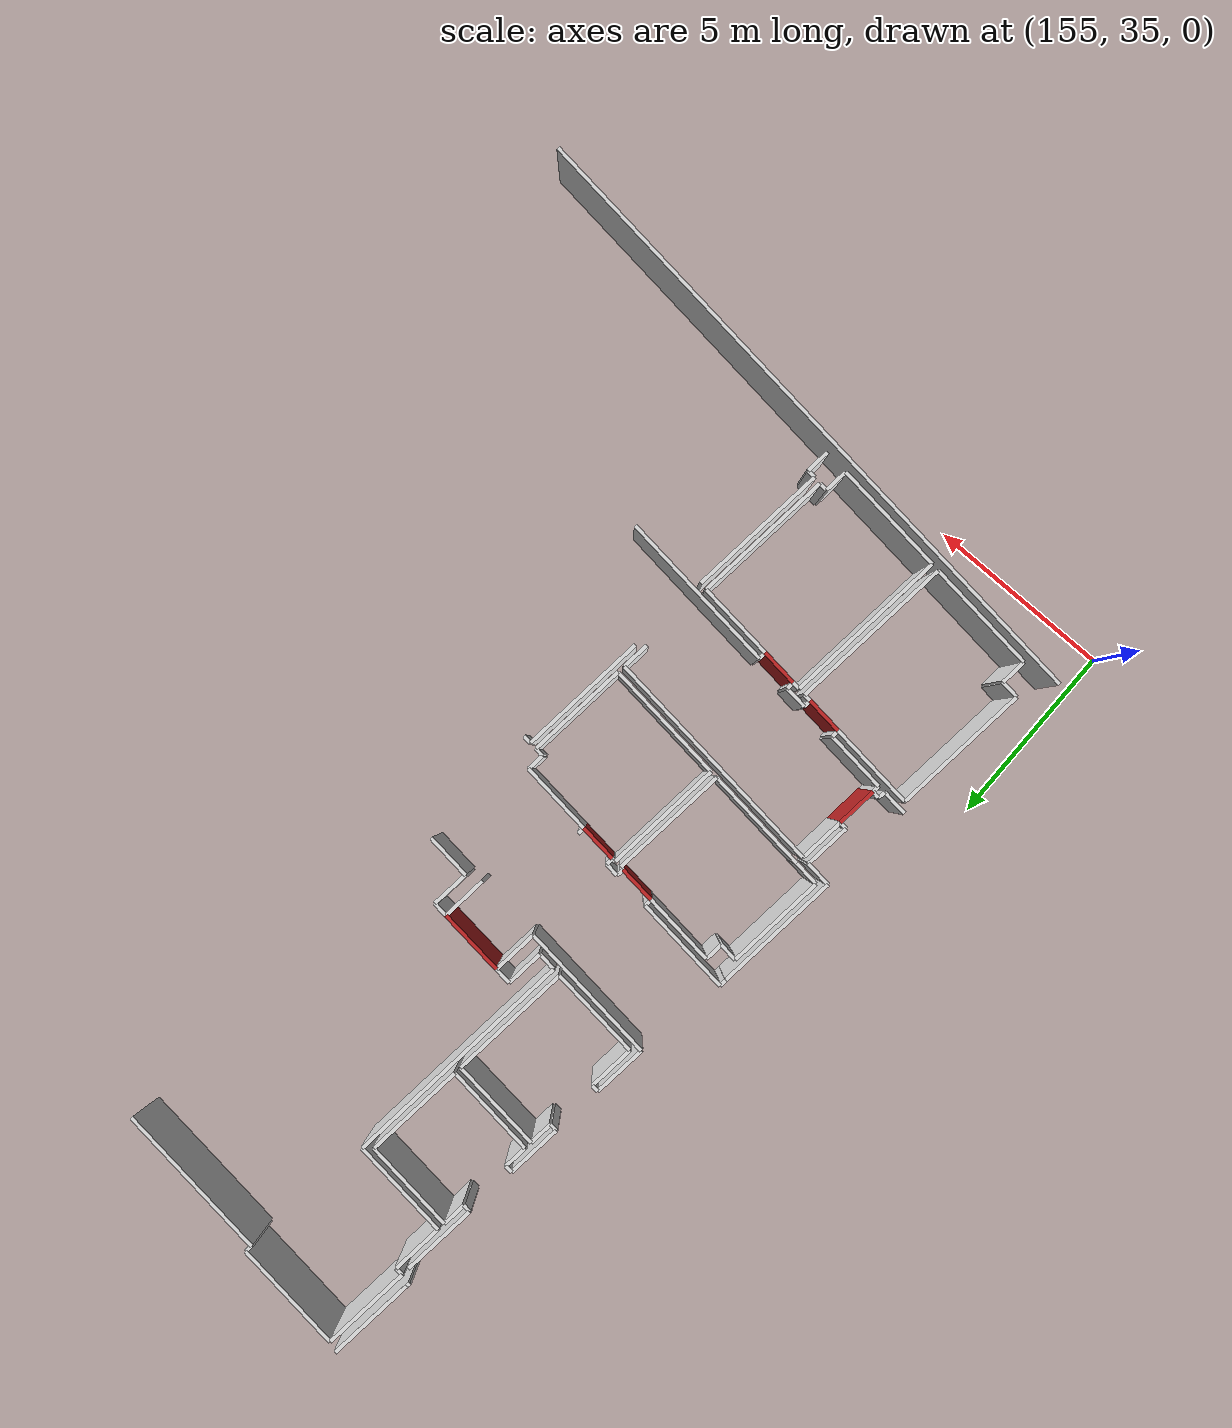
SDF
<sdf version="1.6">
 <world name="default">
  <model name="wall_161.1_40.6">
   <static>true</static>
   <pose>161.1350000000093 40.56000000005588 1.5 0 0 -0.1206236686924795</pose>
   <link name="link">
    <visual name="visual">
     <geometry><box><size>0.9972462083198822 0.1 3</size></box></geometry>
     <material>
      <script><uri>file://media/materials/scripts/gazebo.material</uri><name>Gazebo/Red</name></script>
     </material>
    </visual>
   </link>
  </model>
  <model name="wall_160.4_46.8">
   <static>true</static>
   <pose>160.3850000000093 46.81999999983236 1.5 0 0 -0.1206236686924795</pose>
   <link name="link">
    <visual name="visual">
     <geometry><box><size>0.9972462083198822 0.1 3</size></box></geometry>
     <material>
      <script><uri>file://media/materials/scripts/gazebo.material</uri><name>Gazebo/Red</name></script>
     </material>
    </visual>
   </link>
  </model>
  <model name="wall_161.8_46.7">
   <static>true</static>
   <pose>161.7600000000093 46.66000000014901 1.5 0 0 -0.11942892612851068</pose>
   <link name="link">
    <visual name="visual">
     <geometry><box><size>1.0071742649744493 0.1 3</size></box></geometry>
     <material>
      <script><uri>file://media/materials/scripts/gazebo.material</uri><name>Gazebo/Red</name></script>
     </material>
    </visual>
   </link>
  </model>
  <model name="wall_162.6_50.5">
   <static>true</static>
   <pose>162.57000000000698 50.484999999869615 1.5 0 0 3.02415796381574</pose>
   <link name="link">
    <visual name="visual">
     <geometry><box><size>1.7923448329168745 0.1 3</size></box></geometry>
     <material>
      <script><uri>file://media/materials/scripts/gazebo.material</uri><name>Gazebo/Red</name></script>
     </material>
    </visual>
   </link>
  </model>
  <model name="wall_157.5_41.9">
   <static>true</static>
   <pose>157.51500000001397 41.94500000006519 1.5 0 0 -1.6895016639081246</pose>
   <link name="link">
    <visual name="visual">
     <geometry><box><size>1.0977249203199801 0.1 3</size></box></geometry>
     <material>
      <script><uri>file://media/materials/scripts/gazebo.material</uri><name>Gazebo/Red</name></script>
     </material>
    </visual>
   </link>
  </model>
  <model name="wall_159.5_40.8">
   <static>true</static>
   <pose>159.5449999999837 40.75 1.5 0 0 -0.1206236686924795</pose>
   <link name="link">
    <visual name="visual">
     <geometry><box><size>0.9972462083198822 0.1 3</size></box></geometry>
     <material>
      <script><uri>file://media/materials/scripts/gazebo.material</uri><name>Gazebo/Red</name></script>
     </material>
    </visual>
   </link>
  </model>
  <model name="wall_163.6_36.1">
   <static>true</static>
   <pose>163.64499999998952 36.11999999987893 1.5 0 0 1.4618543698162652</pose>
   <link name="link">
    <visual name="visual">
     <geometry><box><size>0.6438167442431666 0.1 3</size></box></geometry>
     <material>
      <script><uri>file://media/materials/scripts/gazebo.material</uri><name>Gazebo/White</name></script>
     </material>
    </visual>
   </link>
  </model>
  <model name="wall_163.6_36.5">
   <static>true</static>
   <pose>163.57000000000698 36.455000000074506 1.5 0 0 3.00606493842361</pose>
   <link name="link">
    <visual name="visual">
     <geometry><box><size>0.2220360331192952 0.1 3</size></box></geometry>
     <material>
      <script><uri>file://media/materials/scripts/gazebo.material</uri><name>Gazebo/White</name></script>
     </material>
    </visual>
   </link>
  </model>
  <model name="wall_163.7_38.3">
   <static>true</static>
   <pose>163.69000000000233 38.34500000020489 1.5 0 0 1.44873942407576</pose>
   <link name="link">
    <visual name="visual">
     <geometry><box><size>3.7781079920994487 0.1 3</size></box></geometry>
     <material>
      <script><uri>file://media/materials/scripts/gazebo.material</uri><name>Gazebo/White</name></script>
     </material>
    </visual>
   </link>
  </model>
  <model name="wall_162.7_40.4">
   <static>true</static>
   <pose>162.67499999998836 40.375 1.5 0 0 3.0225410860422697</pose>
   <link name="link">
    <visual name="visual">
     <geometry><box><size>2.104899047428106 0.1 3</size></box></geometry>
     <material>
      <script><uri>file://media/materials/scripts/gazebo.material</uri><name>Gazebo/White</name></script>
     </material>
    </visual>
   </link>
  </model>
  <model name="wall_160.5_40.6">
   <static>true</static>
   <pose>160.54000000000815 40.63000000012107 1.5 0 0 3.0419240010121844</pose>
   <link name="link">
    <visual name="visual">
     <geometry><box><size>0.20099751243585498 0.1 3</size></box></geometry>
     <material>
      <script><uri>file://media/materials/scripts/gazebo.material</uri><name>Gazebo/White</name></script>
     </material>
    </visual>
   </link>
  </model>
  <model name="wall_160.2_38.4">
   <static>true</static>
   <pose>160.17499999998836 38.44000000017695 1.5 0 0 -1.690673321615393</pose>
   <link name="link">
    <visual name="visual">
     <geometry><box><size>4.4318055010582365 0.1 3</size></box></geometry>
     <material>
      <script><uri>file://media/materials/scripts/gazebo.material</uri><name>Gazebo/White</name></script>
     </material>
    </visual>
   </link>
  </model>
  <model name="wall_161.4_36.1">
   <static>true</static>
   <pose>161.43499999999767 36.06000000005588 1.5 0 0 -0.11748918977593945</pose>
   <link name="link">
    <visual name="visual">
     <geometry><box><size>3.071172414652986 0.1 3</size></box></geometry>
     <material>
      <script><uri>file://media/materials/scripts/gazebo.material</uri><name>Gazebo/White</name></script>
     </material>
    </visual>
   </link>
  </model>
  <model name="wall_163.0_36.2">
   <static>true</static>
   <pose>163.0 36.199999999953434 1.5 0 0 1.4464413323376855</pose>
   <link name="link">
    <visual name="visual">
     <geometry><box><size>0.6449806199880641 0.1 3</size></box></geometry>
     <material>
      <script><uri>file://media/materials/scripts/gazebo.material</uri><name>Gazebo/White</name></script>
     </material>
    </visual>
   </link>
  </model>
  <model name="wall_163.1_36.5">
   <static>true</static>
   <pose>163.14999999999418 36.50500000012107 1.5 0 0 -0.13552771305276134</pose>
   <link name="link">
    <visual name="visual">
     <geometry><box><size>0.22203603311405212 0.1 3</size></box></geometry>
     <material>
      <script><uri>file://media/materials/scripts/gazebo.material</uri><name>Gazebo/White</name></script>
     </material>
    </visual>
   </link>
  </model>
  <model name="wall_163.5_38.4">
   <static>true</static>
   <pose>163.4899999999907 38.37000000011176 1.5 0 0 1.4490608416488255</pose>
   <link name="link">
    <visual name="visual">
     <geometry><box><size>3.7880337905415886 0.1 3</size></box></geometry>
     <material>
      <script><uri>file://media/materials/scripts/gazebo.material</uri><name>Gazebo/White</name></script>
     </material>
    </visual>
   </link>
  </model>
  <model name="wall_162.3_46.7">
   <static>true</static>
   <pose>162.27000000001863 46.69500000006519 1.5 0 0 -1.675673265652709</pose>
   <link name="link">
    <visual name="visual">
     <geometry><box><size>0.19104973169180559 0.1 3</size></box></geometry>
     <material>
      <script><uri>file://media/materials/scripts/gazebo.material</uri><name>Gazebo/White</name></script>
     </material>
    </visual>
   </link>
  </model>
  <model name="wall_161.3_46.8">
   <static>true</static>
   <pose>161.27000000001863 46.81500000017695 1.5 0 0 1.4659193879370842</pose>
   <link name="link">
    <visual name="visual">
     <geometry><box><size>0.19104973169180559 0.1 3</size></box></geometry>
     <material>
      <script><uri>file://media/materials/scripts/gazebo.material</uri><name>Gazebo/White</name></script>
     </material>
    </visual>
   </link>
  </model>
  <model name="wall_161.1_46.9">
   <static>true</static>
   <pose>161.09500000000116 46.93500000005588 1.5 0 0 3.007271212150422</pose>
   <link name="link">
    <visual name="visual">
     <geometry><box><size>0.3733630940800139 0.1 3</size></box></geometry>
     <material>
      <script><uri>file://media/materials/scripts/gazebo.material</uri><name>Gazebo/White</name></script>
     </material>
    </visual>
   </link>
  </model>
  <model name="wall_160.9_46.9">
   <static>true</static>
   <pose>160.89499999998952 46.859999999869615 1.5 0 0 -1.7196862741197598</pose>
   <link name="link">
    <visual name="visual">
     <geometry><box><size>0.20223748434128064 0.1 3</size></box></geometry>
     <material>
      <script><uri>file://media/materials/scripts/gazebo.material</uri><name>Gazebo/White</name></script>
     </material>
    </visual>
   </link>
  </model>
  <model name="wall_159.9_47.0">
   <static>true</static>
   <pose>159.89999999999418 46.97999999998137 1.5 0 0 1.4711276745918913</pose>
   <link name="link">
    <visual name="visual">
     <geometry><box><size>0.20099751260381943 0.1 3</size></box></geometry>
     <material>
      <script><uri>file://media/materials/scripts/gazebo.material</uri><name>Gazebo/White</name></script>
     </material>
    </visual>
   </link>
  </model>
  <model name="wall_158.6_47.2">
   <static>true</static>
   <pose>158.5899999999965 47.23999999999069 1.5 0 0 3.020968985070269</pose>
   <link name="link">
    <visual name="visual">
     <geometry><box><size>2.659323222111057 0.1 3</size></box></geometry>
     <material>
      <script><uri>file://media/materials/scripts/gazebo.material</uri><name>Gazebo/White</name></script>
     </material>
    </visual>
   </link>
  </model>
  <model name="wall_157.3_47.3">
   <static>true</static>
   <pose>157.2600000000093 47.300000000046566 1.5 0 0 -1.670464979516584</pose>
   <link name="link">
    <visual name="visual">
     <geometry><box><size>0.20099751214626105 0.1 3</size></box></geometry>
     <material>
      <script><uri>file://media/materials/scripts/gazebo.material</uri><name>Gazebo/White</name></script>
     </material>
    </visual>
   </link>
  </model>
  <model name="wall_158.5_56.5">
   <static>true</static>
   <pose>158.51500000001397 56.53000000002794 1.5 0 0 -1.6939325529007196</pose>
   <link name="link">
    <visual name="visual">
     <geometry><box><size>2.0354115063237828 0.1 3</size></box></geometry>
     <material>
      <script><uri>file://media/materials/scripts/gazebo.material</uri><name>Gazebo/White</name></script>
     </material>
    </visual>
   </link>
  </model>
  <model name="wall_158.5_55.5">
   <static>true</static>
   <pose>158.49499999999534 55.50500000012107 1.5 0 0 -0.14189705367284136</pose>
   <link name="link">
    <visual name="visual">
     <geometry><box><size>0.2121320342901098 0.1 3</size></box></geometry>
     <material>
      <script><uri>file://media/materials/scripts/gazebo.material</uri><name>Gazebo/White</name></script>
     </material>
    </visual>
   </link>
  </model>
  <model name="wall_158.3_54.1">
   <static>true</static>
   <pose>158.3299999999872 54.11999999987893 1.5 0 0 3.0419240010121844</pose>
   <link name="link">
    <visual name="visual">
     <geometry><box><size>0.20099751243585498 0.1 3</size></box></geometry>
     <material>
      <script><uri>file://media/materials/scripts/gazebo.material</uri><name>Gazebo/White</name></script>
     </material>
    </visual>
   </link>
  </model>
  <model name="wall_158.1_53.4">
   <static>true</static>
   <pose>158.13999999998487 53.389999999897555 1.5 0 0 -1.6918235466009592</pose>
   <link name="link">
    <visual name="visual">
     <geometry><box><size>1.4909057649436974 0.1 3</size></box></geometry>
     <material>
      <script><uri>file://media/materials/scripts/gazebo.material</uri><name>Gazebo/White</name></script>
     </material>
    </visual>
   </link>
  </model>
  <model name="wall_158.1_52.6">
   <static>true</static>
   <pose>158.14999999999418 52.639999999897555 1.5 0 0 -0.09966865257760905</pose>
   <link name="link">
    <visual name="visual">
     <geometry><box><size>0.20099751243585498 0.1 3</size></box></geometry>
     <material>
      <script><uri>file://media/materials/scripts/gazebo.material</uri><name>Gazebo/White</name></script>
     </material>
    </visual>
   </link>
  </model>
  <model name="wall_158.0_51.3">
   <static>true</static>
   <pose>157.98500000001513 51.26000000000931 1.5 0 0 3.0367157147638757</pose>
   <link name="link">
    <visual name="visual">
     <geometry><box><size>0.19104973174969345 0.1 3</size></box></geometry>
     <material>
      <script><uri>file://media/materials/scripts/gazebo.material</uri><name>Gazebo/White</name></script>
     </material>
    </visual>
   </link>
  </model>
  <model name="wall_157.8_50.6">
   <static>true</static>
   <pose>157.80000000001746 50.55499999993481 1.5 0 0 -1.6960119063078065</pose>
   <link name="link">
    <visual name="visual">
     <geometry><box><size>1.4412841498042397 0.1 3</size></box></geometry>
     <material>
      <script><uri>file://media/materials/scripts/gazebo.material</uri><name>Gazebo/White</name></script>
     </material>
    </visual>
   </link>
  </model>
  <model name="wall_159.6_49.6">
   <static>true</static>
   <pose>159.62000000002445 49.609999999869615 1.5 0 0 -0.11984180790081929</pose>
   <link name="link">
    <visual name="visual">
     <geometry><box><size>3.8475966524597003 0.1 3</size></box></geometry>
     <material>
      <script><uri>file://media/materials/scripts/gazebo.material</uri><name>Gazebo/White</name></script>
     </material>
    </visual>
   </link>
  </model>
  <model name="wall_161.6_50.0">
   <static>true</static>
   <pose>161.60500000001048 49.984999999869615 1.5 0 0 1.4474586259198403</pose>
   <link name="link">
    <visual name="visual">
     <geometry><box><size>1.2192620718694447 0.1 3</size></box></geometry>
     <material>
      <script><uri>file://media/materials/scripts/gazebo.material</uri><name>Gazebo/White</name></script>
     </material>
    </visual>
   </link>
  </model>
  <model name="wall_163.4_49.8">
   <static>true</static>
   <pose>163.39000000001397 49.77499999990687 1.5 0 0 -1.6859866085024886</pose>
   <link name="link">
    <visual name="visual">
     <geometry><box><size>1.2180722474113592 0.1 3</size></box></geometry>
     <material>
      <script><uri>file://media/materials/scripts/gazebo.material</uri><name>Gazebo/White</name></script>
     </material>
    </visual>
   </link>
  </model>
  <model name="wall_164.4_44.1">
   <static>true</static>
   <pose>164.38000000000466 44.12000000011176 1.5 0 0 1.4500000360731269</pose>
   <link name="link">
    <visual name="visual">
     <geometry><box><size>3.4853981120924216 0.1 3</size></box></geometry>
     <material>
      <script><uri>file://media/materials/scripts/gazebo.material</uri><name>Gazebo/White</name></script>
     </material>
    </visual>
   </link>
  </model>
  <model name="wall_164.7_45.8">
   <static>true</static>
   <pose>164.7050000000163 45.83499999996275 1.5 0 0 -0.12970253828111597</pose>
   <link name="link">
    <visual name="visual">
     <geometry><box><size>0.23194827011012187 0.1 3</size></box></geometry>
     <material>
      <script><uri>file://media/materials/scripts/gazebo.material</uri><name>Gazebo/White</name></script>
     </material>
    </visual>
   </link>
  </model>
  <model name="wall_158.0_50.6">
   <static>true</static>
   <pose>158.00500000000466 50.62999999988824 1.5 0 0 -1.6911791475924711</pose>
   <link name="link">
    <visual name="visual">
     <geometry><box><size>1.2490396313013081 0.1 3</size></box></geometry>
     <material>
      <script><uri>file://media/materials/scripts/gazebo.material</uri><name>Gazebo/White</name></script>
     </material>
    </visual>
   </link>
  </model>
  <model name="wall_159.2_49.9">
   <static>true</static>
   <pose>159.1699999999837 49.86499999999069 1.5 0 0 -0.11640682593514659</pose>
   <link name="link">
    <visual name="visual">
     <geometry><box><size>2.4968980755447623 0.1 3</size></box></geometry>
     <material>
      <script><uri>file://media/materials/scripts/gazebo.material</uri><name>Gazebo/White</name></script>
     </material>
    </visual>
   </link>
  </model>
  <model name="wall_160.6_51.4">
   <static>true</static>
   <pose>160.60999999998603 51.35000000009313 1.5 0 0 1.4487071893822745</pose>
   <link name="link">
    <visual name="visual">
     <geometry><box><size>3.284448203056534 0.1 3</size></box></geometry>
     <material>
      <script><uri>file://media/materials/scripts/gazebo.material</uri><name>Gazebo/White</name></script>
     </material>
    </visual>
   </link>
  </model>
  <model name="wall_159.6_53.1">
   <static>true</static>
   <pose>159.57000000000698 53.125 1.5 0 0 3.025185827469413</pose>
   <link name="link">
    <visual name="visual">
     <geometry><box><size>2.4968980755988457 0.1 3</size></box></geometry>
     <material>
      <script><uri>file://media/materials/scripts/gazebo.material</uri><name>Gazebo/White</name></script>
     </material>
    </visual>
   </link>
  </model>
  <model name="wall_158.3_52.9">
   <static>true</static>
   <pose>158.29000000000815 52.949999999953434 1.5 0 0 -1.695151321341658</pose>
   <link name="link">
    <visual name="visual">
     <geometry><box><size>0.6449806199952839 0.1 3</size></box></geometry>
     <material>
      <script><uri>file://media/materials/scripts/gazebo.material</uri><name>Gazebo/White</name></script>
     </material>
    </visual>
   </link>
  </model>
  <model name="wall_158.8_57.0">
   <static>true</static>
   <pose>158.7850000000035 57.03000000002794 1.5 0 0 1.4482254517181363</pose>
   <link name="link">
    <visual name="visual">
     <geometry><box><size>1.390431588022665 0.1 3</size></box></geometry>
     <material>
      <script><uri>file://media/materials/scripts/gazebo.material</uri><name>Gazebo/White</name></script>
     </material>
    </visual>
   </link>
  </model>
  <model name="wall_158.8_57.7">
   <static>true</static>
   <pose>158.76499999998487 57.730000000214204 1.5 0 0 3.0466409471685547</pose>
   <link name="link">
    <visual name="visual">
     <geometry><box><size>0.21095023111991618 0.1 3</size></box></geometry>
     <material>
      <script><uri>file://media/materials/scripts/gazebo.material</uri><name>Gazebo/White</name></script>
     </material>
    </visual>
   </link>
  </model>
  <model name="wall_158.8_58.9">
   <static>true</static>
   <pose>158.80499999999302 58.93000000016764 1.5 0 0 1.4495453057038894</pose>
   <link name="link">
    <visual name="visual">
     <geometry><box><size>2.3976029695280316 0.1 3</size></box></geometry>
     <material>
      <script><uri>file://media/materials/scripts/gazebo.material</uri><name>Gazebo/White</name></script>
     </material>
    </visual>
   </link>
  </model>
  <model name="wall_160.4_59.9">
   <static>true</static>
   <pose>160.44000000000233 59.93999999994412 1.5 0 0 -0.12022278677294355</pose>
   <link name="link">
    <visual name="visual">
     <geometry><box><size>3.0016662039824453 0.1 3</size></box></geometry>
     <material>
      <script><uri>file://media/materials/scripts/gazebo.material</uri><name>Gazebo/White</name></script>
     </material>
    </visual>
   </link>
  </model>
  <model name="wall_161.9_59.7">
   <static>true</static>
   <pose>161.9199999999837 59.66499999980442 1.5 0 0 -1.675673265652709</pose>
   <link name="link">
    <visual name="visual">
     <geometry><box><size>0.19104973169180559 0.1 3</size></box></geometry>
     <material>
      <script><uri>file://media/materials/scripts/gazebo.material</uri><name>Gazebo/White</name></script>
     </material>
    </visual>
   </link>
  </model>
  <model name="wall_164.0_59.3">
   <static>true</static>
   <pose>164.02999999999884 59.31499999994412 1.5 0 0 -0.11970791786700266</pose>
   <link name="link">
    <visual name="visual">
     <geometry><box><size>4.27056202392456 0.1 3</size></box></geometry>
     <material>
      <script><uri>file://media/materials/scripts/gazebo.material</uri><name>Gazebo/White</name></script>
     </material>
    </visual>
   </link>
  </model>
  <model name="wall_164.3_49.2">
   <static>true</static>
   <pose>164.3399999999965 49.24499999987893 1.5 0 0 3.0192558198525035</pose>
   <link name="link">
    <visual name="visual">
     <geometry><box><size>1.2291867230188886 0.1 3</size></box></geometry>
     <material>
      <script><uri>file://media/materials/scripts/gazebo.material</uri><name>Gazebo/White</name></script>
     </material>
    </visual>
   </link>
  </model>
  <model name="wall_163.8_49.8">
   <static>true</static>
   <pose>163.7949999999837 49.824999999953434 1.5 0 0 1.44278726814752</pose>
   <link name="link">
    <visual name="visual">
     <geometry><box><size>1.0183319696888344 0.1 3</size></box></geometry>
     <material>
      <script><uri>file://media/materials/scripts/gazebo.material</uri><name>Gazebo/White</name></script>
     </material>
    </visual>
   </link>
  </model>
  <model name="wall_163.7_50.4">
   <static>true</static>
   <pose>163.6600000000035 50.35499999998137 1.5 0 0 3.017237659490783</pose>
   <link name="link">
    <visual name="visual">
     <geometry><box><size>0.4031128873571693 0.1 3</size></box></geometry>
     <material>
      <script><uri>file://media/materials/scripts/gazebo.material</uri><name>Gazebo/White</name></script>
     </material>
    </visual>
   </link>
  </model>
  <model name="wall_161.5_50.6">
   <static>true</static>
   <pose>161.4549999999872 50.61499999999069 1.5 0 0 3.030935431805427</pose>
   <link name="link">
    <visual name="visual">
     <geometry><box><size>0.4527692569492954 0.1 3</size></box></geometry>
     <material>
      <script><uri>file://media/materials/scripts/gazebo.material</uri><name>Gazebo/White</name></script>
     </material>
    </visual>
   </link>
  </model>
  <model name="wall_161.2_50.1">
   <static>true</static>
   <pose>161.1699999999837 50.13500000000931 1.5 0 0 -1.6890538359013414</pose>
   <link name="link">
    <visual name="visual">
     <geometry><box><size>1.0171037314295985 0.1 3</size></box></geometry>
     <material>
      <script><uri>file://media/materials/scripts/gazebo.material</uri><name>Gazebo/White</name></script>
     </material>
    </visual>
   </link>
  </model>
  <model name="wall_160.9_49.7">
   <static>true</static>
   <pose>160.8649999999907 49.65999999991618 1.5 0 0 3.019750216455228</pose>
   <link name="link">
    <visual name="visual">
     <geometry><box><size>0.4936598018854468 0.1 3</size></box></geometry>
     <material>
      <script><uri>file://media/materials/scripts/gazebo.material</uri><name>Gazebo/White</name></script>
     </material>
    </visual>
   </link>
  </model>
  <model name="wall_161.0_52.9">
   <static>true</static>
   <pose>161.0 52.85499999998137 1.5 0 0 1.4513051071243046</pose>
   <link name="link">
    <visual name="visual">
     <geometry><box><size>6.375460767737294 0.1 3</size></box></geometry>
     <material>
      <script><uri>file://media/materials/scripts/gazebo.material</uri><name>Gazebo/White</name></script>
     </material>
    </visual>
   </link>
  </model>
  <model name="wall_160.0_56.2">
   <static>true</static>
   <pose>160.04000000000815 56.17999999993481 1.5 0 0 3.0227523090833937</pose>
   <link name="link">
    <visual name="visual">
     <geometry><box><size>2.6990368652271632 0.1 3</size></box></geometry>
     <material>
      <script><uri>file://media/materials/scripts/gazebo.material</uri><name>Gazebo/White</name></script>
     </material>
    </visual>
   </link>
  </model>
  <model name="wall_160.8_45.2">
   <static>true</static>
   <pose>160.77499999999418 45.16500000003725 1.5 0 0 -1.6932095761983161</pose>
   <link name="link">
    <visual name="visual">
     <geometry><box><size>3.193900436690713 0.1 3</size></box></geometry>
     <material>
      <script><uri>file://media/materials/scripts/gazebo.material</uri><name>Gazebo/White</name></script>
     </material>
    </visual>
   </link>
  </model>
  <model name="wall_159.2_43.8">
   <static>true</static>
   <pose>159.1700000000128 43.75 1.5 0 0 3.0216044435658165</pose>
   <link name="link">
    <visual name="visual">
     <geometry><box><size>2.840422503772646 0.1 3</size></box></geometry>
     <material>
      <script><uri>file://media/materials/scripts/gazebo.material</uri><name>Gazebo/White</name></script>
     </material>
    </visual>
   </link>
  </model>
  <model name="wall_157.4_44.0">
   <static>true</static>
   <pose>157.41500000000815 43.96499999985099 1.5 0 0 3.01189011664666</pose>
   <link name="link">
    <visual name="visual">
     <geometry><box><size>0.6958448102676278 0.1 3</size></box></geometry>
     <material>
      <script><uri>file://media/materials/scripts/gazebo.material</uri><name>Gazebo/White</name></script>
     </material>
    </visual>
   </link>
  </model>
  <model name="wall_157.2_45.3">
   <static>true</static>
   <pose>157.23000000001048 45.34499999997206 1.5 0 0 1.4515150894624935</pose>
   <link name="link">
    <visual name="visual">
     <geometry><box><size>2.6891076590745193 0.1 3</size></box></geometry>
     <material>
      <script><uri>file://media/materials/scripts/gazebo.material</uri><name>Gazebo/White</name></script>
     </material>
    </visual>
   </link>
  </model>
  <model name="wall_157.6_46.7">
   <static>true</static>
   <pose>157.6350000000093 46.6500000001397 1.5 0 0 -0.12184243713456504</pose>
   <link name="link">
    <visual name="visual">
     <geometry><box><size>0.4936598018854468 0.1 3</size></box></geometry>
     <material>
      <script><uri>file://media/materials/scripts/gazebo.material</uri><name>Gazebo/White</name></script>
     </material>
    </visual>
   </link>
  </model>
  <model name="wall_157.9_46.9">
   <static>true</static>
   <pose>157.9100000000035 46.87000000011176 1.5 0 0 1.4513674007811488</pose>
   <link name="link">
    <visual name="visual">
     <geometry><box><size>0.5035871324802894 0.1 3</size></box></geometry>
     <material>
      <script><uri>file://media/materials/scripts/gazebo.material</uri><name>Gazebo/White</name></script>
     </material>
    </visual>
   </link>
  </model>
  <model name="wall_158.9_47.0">
   <static>true</static>
   <pose>158.91500000000815 47.0 1.5 0 0 -0.12246105752953153</pose>
   <link name="link">
    <visual name="visual">
     <geometry><box><size>1.964713719642811 0.1 3</size></box></geometry>
     <material>
      <script><uri>file://media/materials/scripts/gazebo.material</uri><name>Gazebo/White</name></script>
     </material>
    </visual>
   </link>
  </model>
  <model name="wall_160.9_46.8">
   <static>true</static>
   <pose>160.92499999998836 46.75499999988824 1.5 0 0 -0.11065721876040727</pose>
   <link name="link">
    <visual name="visual">
     <geometry><box><size>0.09055385132429387 0.1 3</size></box></geometry>
     <material>
      <script><uri>file://media/materials/scripts/gazebo.material</uri><name>Gazebo/White</name></script>
     </material>
    </visual>
   </link>
  </model>
  <model name="wall_161.0_45.1">
   <static>true</static>
   <pose>160.97000000000116 45.14500000001863 1.5 0 0 1.4514917943710839</pose>
   <link name="link">
    <visual name="visual">
     <geometry><box><size>3.1926947864596977 0.1 3</size></box></geometry>
     <material>
      <script><uri>file://media/materials/scripts/gazebo.material</uri><name>Gazebo/White</name></script>
     </material>
    </visual>
   </link>
  </model>
  <model name="wall_161.2_46.7">
   <static>true</static>
   <pose>161.20999999999185 46.72500000009313 1.5 0 0 -0.09966865024353948</pose>
   <link name="link">
    <visual name="visual">
     <geometry><box><size>0.10049875622371936 0.1 3</size></box></geometry>
     <material>
      <script><uri>file://media/materials/scripts/gazebo.material</uri><name>Gazebo/White</name></script>
     </material>
    </visual>
   </link>
  </model>
  <model name="wall_163.2_46.5">
   <static>true</static>
   <pose>163.2399999999907 46.47999999998137 1.5 0 0 -0.12184243713456504</pose>
   <link name="link">
    <visual name="visual">
     <geometry><box><size>1.9746392075417871 0.1 3</size></box></geometry>
     <material>
      <script><uri>file://media/materials/scripts/gazebo.material</uri><name>Gazebo/White</name></script>
     </material>
    </visual>
   </link>
  </model>
  <model name="wall_164.2_46.1">
   <static>true</static>
   <pose>164.18999999997322 46.12999999988824 1.5 0 0 -1.7004988639562184</pose>
   <link name="link">
    <visual name="visual">
     <geometry><box><size>0.46389654015248694 0.1 3</size></box></geometry>
     <material>
      <script><uri>file://media/materials/scripts/gazebo.material</uri><name>Gazebo/White</name></script>
     </material>
    </visual>
   </link>
  </model>
  <model name="wall_164.3_45.9">
   <static>true</static>
   <pose>164.27999999999884 45.88500000000931 1.5 0 0 -0.12435499368110904</pose>
   <link name="link">
    <visual name="visual">
     <geometry><box><size>0.24186773247205975 0.1 3</size></box></geometry>
     <material>
      <script><uri>file://media/materials/scripts/gazebo.material</uri><name>Gazebo/White</name></script>
     </material>
    </visual>
   </link>
  </model>
  <model name="wall_164.2_44.5">
   <static>true</static>
   <pose>164.23500000001513 44.515000000130385 1.5 0 0 -1.6919709595141523</pose>
   <link name="link">
    <visual name="visual">
     <geometry><box><size>2.73001831492187 0.1 3</size></box></geometry>
     <material>
      <script><uri>file://media/materials/scripts/gazebo.material</uri><name>Gazebo/White</name></script>
     </material>
    </visual>
   </link>
  </model>
  <model name="wall_162.4_43.4">
   <static>true</static>
   <pose>162.42500000001746 43.360000000102445 1.5 0 0 3.0206059098054316</pose>
   <link name="link">
    <visual name="visual">
     <geometry><box><size>3.3142269083132514 0.1 3</size></box></geometry>
     <material>
      <script><uri>file://media/materials/scripts/gazebo.material</uri><name>Gazebo/White</name></script>
     </material>
    </visual>
   </link>
  </model>
  <model name="wall_161.0_54.5">
   <static>true</static>
   <pose>160.99499999999534 54.50499999988824 1.5 0 0 1.4478244572426628</pose>
   <link name="link">
    <visual name="visual">
     <geometry><box><size>2.6903159664943592 0.1 3</size></box></geometry>
     <material>
      <script><uri>file://media/materials/scripts/gazebo.material</uri><name>Gazebo/White</name></script>
     </material>
    </visual>
   </link>
  </model>
  <model name="wall_159.9_56.0">
   <static>true</static>
   <pose>159.91499999997905 55.98999999999069 1.5 0 0 3.021688668113723</pose>
   <link name="link">
    <visual name="visual">
     <geometry><box><size>2.508007177047398 0.1 3</size></box></geometry>
     <material>
      <script><uri>file://media/materials/scripts/gazebo.material</uri><name>Gazebo/White</name></script>
     </material>
    </visual>
   </link>
  </model>
  <model name="wall_158.6_55.8">
   <static>true</static>
   <pose>158.6349999999802 55.81500000017695 1.5 0 0 -1.6780751824691755</pose>
   <link name="link">
    <visual name="visual">
     <geometry><box><size>0.6537583650553972 0.1 3</size></box></geometry>
     <material>
      <script><uri>file://media/materials/scripts/gazebo.material</uri><name>Gazebo/White</name></script>
     </material>
    </visual>
   </link>
  </model>
  <model name="wall_158.4_53.8">
   <static>true</static>
   <pose>158.38999999998487 53.79000000003725 1.5 0 0 -1.6951513214312084</pose>
   <link name="link">
    <visual name="visual">
     <geometry><box><size>0.6449806195332185 0.1 3</size></box></geometry>
     <material>
      <script><uri>file://media/materials/scripts/gazebo.material</uri><name>Gazebo/White</name></script>
     </material>
    </visual>
   </link>
  </model>
  <model name="wall_159.6_53.3">
   <static>true</static>
   <pose>159.5899999999965 53.32000000006519 1.5 0 0 -0.12038282090969171</pose>
   <link name="link">
    <visual name="visual">
     <geometry><box><size>2.498079262226073 0.1 3</size></box></geometry>
     <material>
      <script><uri>file://media/materials/scripts/gazebo.material</uri><name>Gazebo/White</name></script>
     </material>
    </visual>
   </link>
  </model>
  <model name="wall_157.0_45.5">
   <static>true</static>
   <pose>157.0450000000128 45.515000000130385 1.5 0 0 -1.6918630613513788</pose>
   <link name="link">
    <visual name="visual">
     <geometry><box><size>3.3948490394614383 0.1 3</size></box></geometry>
     <material>
      <script><uri>file://media/materials/scripts/gazebo.material</uri><name>Gazebo/White</name></script>
     </material>
    </visual>
   </link>
  </model>
  <model name="wall_157.2_43.8">
   <static>true</static>
   <pose>157.18500000002678 43.79000000003725 1.5 0 0 -0.11542666047308585</pose>
   <link name="link">
    <visual name="visual">
     <geometry><box><size>0.6946221994833839 0.1 3</size></box></geometry>
     <material>
      <script><uri>file://media/materials/scripts/gazebo.material</uri><name>Gazebo/White</name></script>
     </material>
    </visual>
   </link>
  </model>
  <model name="wall_157.5_43.1">
   <static>true</static>
   <pose>157.4550000000163 43.12999999988824 1.5 0 0 -1.6911791475924711</pose>
   <link name="link">
    <visual name="visual">
     <geometry><box><size>1.2490396313013081 0.1 3</size></box></geometry>
     <material>
      <script><uri>file://media/materials/scripts/gazebo.material</uri><name>Gazebo/White</name></script>
     </material>
    </visual>
   </link>
  </model>
  <model name="wall_157.5_42.5">
   <static>true</static>
   <pose>157.48000000001048 42.5 1.5 0 0 -0.09966865027235515</pose>
   <link name="link">
    <visual name="visual">
     <geometry><box><size>0.20099751238951993 0.1 3</size></box></geometry>
     <material>
      <script><uri>file://media/materials/scripts/gazebo.material</uri><name>Gazebo/White</name></script>
     </material>
    </visual>
   </link>
  </model>
  <model name="wall_157.4_41.4">
   <static>true</static>
   <pose>157.35500000001048 41.41500000003725 1.5 0 0 2.9849907752705747</pose>
   <link name="link">
    <visual name="visual">
     <geometry><box><size>0.19235384065968367 0.1 3</size></box></geometry>
     <material>
      <script><uri>file://media/materials/scripts/gazebo.material</uri><name>Gazebo/White</name></script>
     </material>
    </visual>
   </link>
  </model>
  <model name="wall_157.2_41.3">
   <static>true</static>
   <pose>157.24499999999534 41.330000000074506 1.5 0 0 -1.719686274404394</pose>
   <link name="link">
    <visual name="visual">
     <geometry><box><size>0.20223748434991518 0.1 3</size></box></geometry>
     <material>
      <script><uri>file://media/materials/scripts/gazebo.material</uri><name>Gazebo/White</name></script>
     </material>
    </visual>
   </link>
  </model>
  <model name="wall_156.9_41.3">
   <static>true</static>
   <pose>156.88000000000466 41.27000000001863 1.5 0 0 3.027800646333516</pose>
   <link name="link">
    <visual name="visual">
     <geometry><box><size>0.7045565981145364 0.1 3</size></box></geometry>
     <material>
      <script><uri>file://media/materials/scripts/gazebo.material</uri><name>Gazebo/White</name></script>
     </material>
    </visual>
   </link>
  </model>
  <model name="wall_156.7_37.0">
   <static>true</static>
   <pose>156.70999999999185 36.97999999998137 1.5 0 0 1.457004319658224</pose>
   <link name="link">
    <visual name="visual">
     <geometry><box><size>0.704556598339252 0.1 3</size></box></geometry>
     <material>
      <script><uri>file://media/materials/scripts/gazebo.material</uri><name>Gazebo/White</name></script>
     </material>
    </visual>
   </link>
  </model>
  <model name="wall_156.5_37.4">
   <static>true</static>
   <pose>156.50500000000466 37.360000000102445 1.5 0 0 3.019750216455228</pose>
   <link name="link">
    <visual name="visual">
     <geometry><box><size>0.4936598018854468 0.1 3</size></box></geometry>
     <material>
      <script><uri>file://media/materials/scripts/gazebo.material</uri><name>Gazebo/White</name></script>
     </material>
    </visual>
   </link>
  </model>
  <model name="wall_156.5_39.2">
   <static>true</static>
   <pose>156.48500000001513 39.23999999999069 1.5 0 0 1.449769106973541</pose>
   <link name="link">
    <visual name="visual">
     <geometry><box><size>3.7272644121316296 0.1 3</size></box></geometry>
     <material>
      <script><uri>file://media/materials/scripts/gazebo.material</uri><name>Gazebo/White</name></script>
     </material>
    </visual>
   </link>
  </model>
  <model name="wall_157.9_40.9">
   <static>true</static>
   <pose>157.88000000000466 40.949999999953434 1.5 0 0 -0.11909188516448511</pose>
   <link name="link">
    <visual name="visual">
     <geometry><box><size>2.3566925976318402 0.1 3</size></box></geometry>
     <material>
      <script><uri>file://media/materials/scripts/gazebo.material</uri><name>Gazebo/White</name></script>
     </material>
    </visual>
   </link>
  </model>
  <model name="wall_160.1_40.7">
   <static>true</static>
   <pose>160.13999999998487 40.67999999993481 1.5 0 0 -0.09966865257760905</pose>
   <link name="link">
    <visual name="visual">
     <geometry><box><size>0.20099751243585498 0.1 3</size></box></geometry>
     <material>
      <script><uri>file://media/materials/scripts/gazebo.material</uri><name>Gazebo/White</name></script>
     </material>
    </visual>
   </link>
  </model>
  <model name="wall_160.0_38.5">
   <static>true</static>
   <pose>159.97000000000116 38.46999999997206 1.5 0 0 -1.6929129367175275</pose>
   <link name="link">
    <visual name="visual">
     <geometry><box><size>4.433012519625655 0.1 3</size></box></geometry>
     <material>
      <script><uri>file://media/materials/scripts/gazebo.material</uri><name>Gazebo/White</name></script>
     </material>
    </visual>
   </link>
  </model>
  <model name="wall_158.2_36.4">
   <static>true</static>
   <pose>158.18499999999767 36.449999999953434 1.5 0 0 3.0233351444942267</pose>
   <link name="link">
    <visual name="visual">
     <geometry><box><size>3.0513111935814474 0.1 3</size></box></geometry>
     <material>
      <script><uri>file://media/materials/scripts/gazebo.material</uri><name>Gazebo/White</name></script>
     </material>
    </visual>
   </link>
  </model>
  <model name="wall_163.8_40.4">
   <static>true</static>
   <pose>163.8400000000256 40.43500000005588 1.5 0 0 3.0211735397007757</pose>
   <link name="link">
    <visual name="visual">
     <geometry><box><size>4.41194968243261 0.1 3</size></box></geometry>
     <material>
      <script><uri>file://media/materials/scripts/gazebo.material</uri><name>Gazebo/White</name></script>
     </material>
    </visual>
   </link>
  </model>
  <model name="wall_161.6_40.6">
   <static>true</static>
   <pose>161.64000000001397 40.60000000009313 1.5 0 0 -1.6704649792860586</pose>
   <link name="link">
    <visual name="visual">
     <geometry><box><size>0.20099751260961132 0.1 3</size></box></geometry>
     <material>
      <script><uri>file://media/materials/scripts/gazebo.material</uri><name>Gazebo/White</name></script>
     </material>
    </visual>
   </link>
  </model>
  <model name="wall_160.6_40.7">
   <static>true</static>
   <pose>160.64999999999418 40.71999999997206 1.5 0 0 1.471127674361366</pose>
   <link name="link">
    <visual name="visual">
     <geometry><box><size>0.20099751214046915 0.1 3</size></box></geometry>
     <material>
      <script><uri>file://media/materials/scripts/gazebo.material</uri><name>Gazebo/White</name></script>
     </material>
    </visual>
   </link>
  </model>
  <model name="wall_160.4_40.9">
   <static>true</static>
   <pose>160.35999999998603 40.85499999998137 1.5 0 0 3.025451026215301</pose>
   <link name="link">
    <visual name="visual">
     <geometry><box><size>0.6040695324329671 0.1 3</size></box></geometry>
     <material>
      <script><uri>file://media/materials/scripts/gazebo.material</uri><name>Gazebo/White</name></script>
     </material>
    </visual>
   </link>
  </model>
  <model name="wall_160.0_40.8">
   <static>true</static>
   <pose>160.04999999998836 40.79000000003725 1.5 0 0 -1.6704649792860586</pose>
   <link name="link">
    <visual name="visual">
     <geometry><box><size>0.20099751260961132 0.1 3</size></box></geometry>
     <material>
      <script><uri>file://media/materials/scripts/gazebo.material</uri><name>Gazebo/White</name></script>
     </material>
    </visual>
   </link>
  </model>
  <model name="wall_159.1_40.9">
   <static>true</static>
   <pose>159.05999999999767 40.90999999991618 1.5 0 0 1.471127674073209</pose>
   <link name="link">
    <visual name="visual">
     <geometry><box><size>0.20099751214626105 0.1 3</size></box></geometry>
     <material>
      <script><uri>file://media/materials/scripts/gazebo.material</uri><name>Gazebo/White</name></script>
     </material>
    </visual>
   </link>
  </model>
  <model name="wall_158.2_41.1">
   <static>true</static>
   <pose>158.25 41.109999999869615 1.5 0 0 3.0202406529081416</pose>
   <link name="link">
    <visual name="visual">
     <geometry><box><size>1.6521501142814858 0.1 3</size></box></geometry>
     <material>
      <script><uri>file://media/materials/scripts/gazebo.material</uri><name>Gazebo/White</name></script>
     </material>
    </visual>
   </link>
  </model>
  <model name="wall_157.4_41.3">
   <static>true</static>
   <pose>157.44000000000233 41.30499999993481 1.5 0 0 1.4659193879370842</pose>
   <link name="link">
    <visual name="visual">
     <geometry><box><size>0.19104973169180559 0.1 3</size></box></geometry>
     <material>
      <script><uri>file://media/materials/scripts/gazebo.material</uri><name>Gazebo/White</name></script>
     </material>
    </visual>
   </link>
  </model>
  <model name="wall_157.7_43.1">
   <static>true</static>
   <pose>157.65499999999884 43.105000000214204 1.5 0 0 1.4494443262502912</pose>
   <link name="link">
    <visual name="visual">
     <geometry><box><size>1.2391125856610858 0.1 3</size></box></geometry>
     <material>
      <script><uri>file://media/materials/scripts/gazebo.material</uri><name>Gazebo/White</name></script>
     </material>
    </visual>
   </link>
  </model>
  <model name="wall_160.9_43.3">
   <static>true</static>
   <pose>160.8849999999802 43.34000000008382 1.5 0 0 -0.11986634401243841</pose>
   <link name="link">
    <visual name="visual">
     <geometry><box><size>6.3556038265721595 0.1 3</size></box></geometry>
     <material>
      <script><uri>file://media/materials/scripts/gazebo.material</uri><name>Gazebo/White</name></script>
     </material>
    </visual>
   </link>
  </model>
  <model name="wall_164.0_42.6">
   <static>true</static>
   <pose>163.99499999999534 42.58499999996275 1.5 0 0 -1.6902252527703903</pose>
   <link name="link">
    <visual name="visual">
     <geometry><box><size>0.7553806987169667 0.1 3</size></box></geometry>
     <material>
      <script><uri>file://media/materials/scripts/gazebo.material</uri><name>Gazebo/White</name></script>
     </material>
    </visual>
   </link>
  </model>
  <model name="wall_164.5_35.4">
   <static>true</static>
   <pose>164.52499999999418 35.41500000003725 1.5 0 0 -0.11969610327774036</pose>
   <link name="link">
    <visual name="visual">
     <geometry><box><size>17.837628766185997 0.1 3</size></box></geometry>
     <material>
      <script><uri>file://media/materials/scripts/gazebo.material</uri><name>Gazebo/White</name></script>
     </material>
    </visual>
   </link>
  </model>
  <model name="wall_158.5_59.1">
   <static>true</static>
   <pose>158.5450000000128 59.06000000005588 1.5 0 0 -1.6930647307080706</pose>
   <link name="link">
    <visual name="visual">
     <geometry><box><size>2.377751038601466 0.1 3</size></box></geometry>
     <material>
      <script><uri>file://media/materials/scripts/gazebo.material</uri><name>Gazebo/White</name></script>
     </material>
    </visual>
   </link>
  </model>
  <model name="wall_158.4_57.8">
   <static>true</static>
   <pose>158.39500000001863 57.829999999841675 1.5 0 0 -1.6704649792860586</pose>
   <link name="link">
    <visual name="visual">
     <geometry><box><size>0.10049875630480566 0.1 3</size></box></geometry>
     <material>
      <script><uri>file://media/materials/scripts/gazebo.material</uri><name>Gazebo/White</name></script>
     </material>
    </visual>
   </link>
  </model>
  <model name="wall_158.5_59.0">
   <static>true</static>
   <pose>158.54000000000815 59.01000000000931 1.5 0 0 1.4494443262497225</pose>
   <link name="link">
    <visual name="visual">
     <geometry><box><size>2.4782251717914545 0.1 3</size></box></geometry>
     <material>
      <script><uri>file://media/materials/scripts/gazebo.material</uri><name>Gazebo/White</name></script>
     </material>
    </visual>
   </link>
  </model>
 </world>
</sdf>
